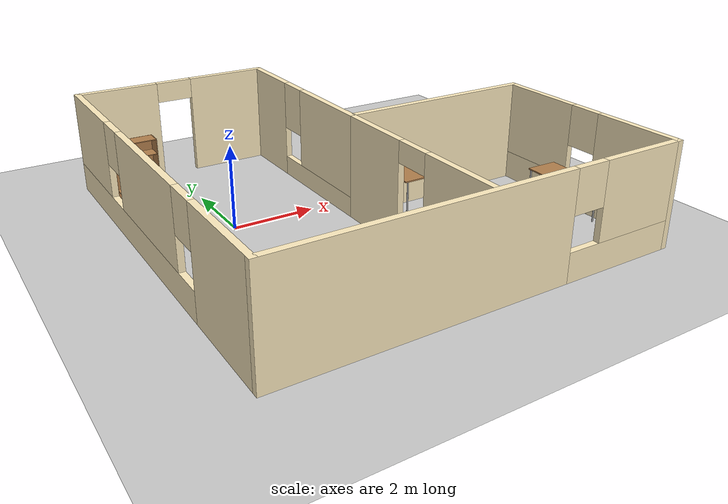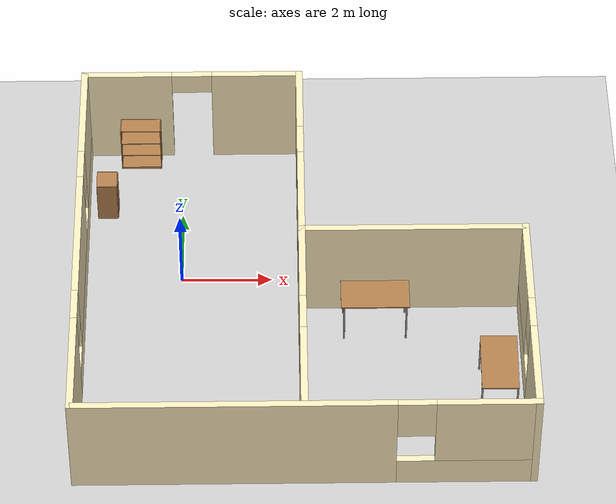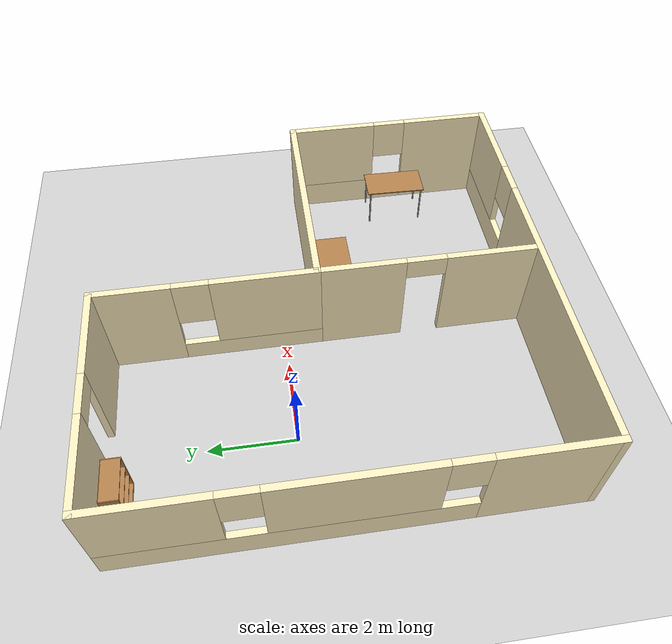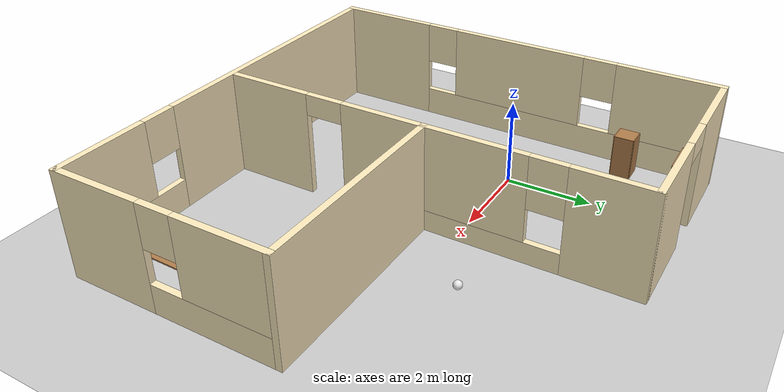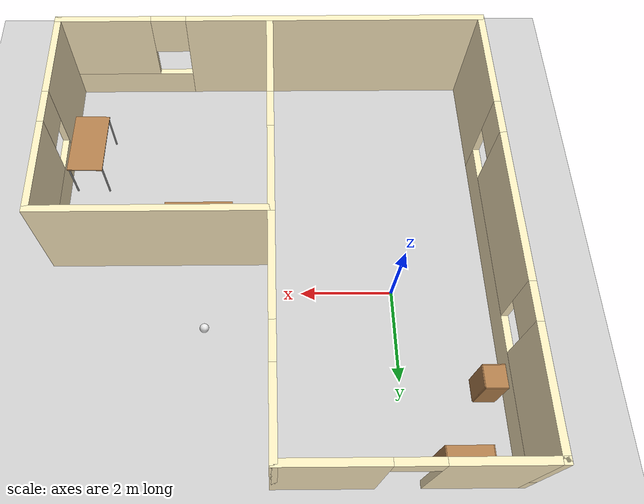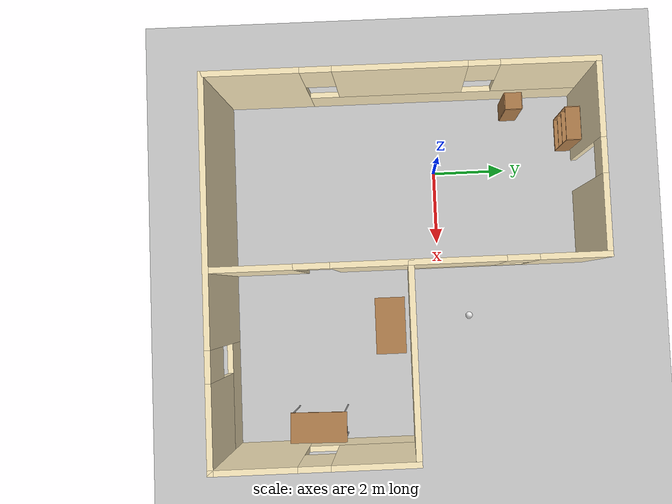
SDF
<sdf version="1.6">
 <world name="default">
  <plugin name="hello" filename="libhello.so"/>
  <light name="sun" type="directional">
   <pose>0 0 10 0 -0 0</pose>
   <diffuse>0.8 0.8 0.8 1</diffuse>
   <specular>0.2 0.2 0.2 1</specular>
   <attenuation>
    <range>1000</range>
    <constant>0.9</constant>
    <linear>0.01</linear>
    <quadratic>0.001</quadratic>
   </attenuation>
   <direction>-0.5 0.1 -0.9</direction>
  </light>
  <model name="ground_plane">
   <static>1</static>
   <link name="link">
    <collision name="collision">
     <geometry><plane><normal>0 0 1</normal><size>100 100</size></plane></geometry>
     <surface>
      <contact><collide_bitmask>65535</collide_bitmask></contact>
      <friction><ode><mu>100</mu><mu2>50</mu2></ode></friction>
     </surface>
    </collision>
    <visual name="visual">
     <cast_shadows>0</cast_shadows>
     <geometry><plane><normal>0 0 1</normal><size>100 100</size></plane></geometry>
     <material>
      <script><uri>file://media/materials/scripts/gazebo.material</uri><name>Gazebo/Grey</name></script>
     </material>
    </visual>
   </link>
  </model>
  <gravity>0 0 -9.8</gravity>
  <magnetic_field>6e-06 2.3e-05 -4.2e-05</magnetic_field>
  <atmosphere type="adiabatic"/>
  <physics name="default_physics" default="0" type="ode">
   <max_step_size>0.001</max_step_size>
   <real_time_factor>1</real_time_factor>
   <real_time_update_rate>1000</real_time_update_rate>
  </physics>
  <scene><ambient>0.4 0.4 0.4 1</ambient><background>0.7 0.7 0.7 1</background><shadows>1</shadows></scene>
  <spherical_coordinates>
   <surface_model>EARTH_WGS84</surface_model>
   <latitude_deg>0</latitude_deg>
   <longitude_deg>0</longitude_deg>
   <elevation>0</elevation>
   <heading_deg>0</heading_deg>
  </spherical_coordinates>
  <model name="mybuilding">
   <pose>2.65738 -0.872216 0 0 -0 0</pose>
   <link name="Wall_62">
    <pose>-4.85 0 0 0 -0 1.5708</pose>
    <visual name="Wall_62_Visual_0">
     <pose>-3.74581 0 1.25 0 -0 0</pose>
     <geometry><box><size>2.50837 0.15 2.5</size></box></geometry>
     <material>
      <script><uri>file://media/materials/scripts/gazebo.material</uri><name>Gazebo/Grey</name></script>
      <ambient>1 0.929412 0.752941 1</ambient>
     </material>
     <meta><layer>0</layer></meta>
    </visual>
    <collision name="Wall_62_Collision_0">
     <geometry><box><size>2.50837 0.15 2.5</size></box></geometry>
     <pose>-3.74581 0 1.25 0 -0 0</pose>
    </collision>
    <visual name="Wall_62_Visual_1">
     <pose>1.25419 0 0.35 0 -0 0</pose>
     <geometry><box><size>7.49163 0.15 0.7</size></box></geometry>
     <material>
      <script><uri>file://media/materials/scripts/gazebo.material</uri><name>Gazebo/Grey</name></script>
      <ambient>1 0.929412 0.752941 1</ambient>
     </material>
     <meta><layer>0</layer></meta>
    </visual>
    <collision name="Wall_62_Collision_1">
     <geometry><box><size>7.49163 0.15 0.7</size></box></geometry>
     <pose>1.25419 0 0.35 0 -0 0</pose>
    </collision>
    <visual name="Wall_62_Visual_2">
     <pose>-0.000724 0 1.6 0 -0 0</pose>
     <geometry><box><size>3.3818 0.15 1.8</size></box></geometry>
     <material>
      <script><uri>file://media/materials/scripts/gazebo.material</uri><name>Gazebo/Grey</name></script>
      <ambient>1 0.929412 0.752941 1</ambient>
     </material>
     <meta><layer>0</layer></meta>
    </visual>
    <collision name="Wall_62_Collision_2">
     <geometry><box><size>3.3818 0.15 1.8</size></box></geometry>
     <pose>-0.000724 0 1.6 0 -0 0</pose>
    </collision>
    <visual name="Wall_62_Visual_3">
     <pose>3.74509 0 1.6 0 -0 0</pose>
     <geometry><box><size>2.50982 0.15 1.8</size></box></geometry>
     <material>
      <script><uri>file://media/materials/scripts/gazebo.material</uri><name>Gazebo/Grey</name></script>
      <ambient>1 0.929412 0.752941 1</ambient>
     </material>
     <meta><layer>0</layer></meta>
    </visual>
    <collision name="Wall_62_Collision_3">
     <geometry><box><size>2.50982 0.15 1.8</size></box></geometry>
     <pose>3.74509 0 1.6 0 -0 0</pose>
    </collision>
    <visual name="Wall_62_Visual_4">
     <pose>-2.09163 0 2 0 -0 0</pose>
     <geometry><box><size>0.8 0.15 1</size></box></geometry>
     <material>
      <script><uri>file://media/materials/scripts/gazebo.material</uri><name>Gazebo/Grey</name></script>
      <ambient>1 0.929412 0.752941 1</ambient>
     </material>
     <meta><layer>0</layer></meta>
    </visual>
    <collision name="Wall_62_Collision_4">
     <geometry><box><size>0.8 0.15 1</size></box></geometry>
     <pose>-2.09163 0 2 0 -0 0</pose>
    </collision>
    <visual name="Wall_62_Visual_5">
     <pose>2.09018 0 2 0 -0 0</pose>
     <geometry><box><size>0.8 0.15 1</size></box></geometry>
     <material>
      <script><uri>file://media/materials/scripts/gazebo.material</uri><name>Gazebo/Grey</name></script>
      <ambient>1 0.929412 0.752941 1</ambient>
     </material>
     <meta><layer>0</layer></meta>
    </visual>
    <collision name="Wall_62_Collision_5">
     <geometry><box><size>0.8 0.15 1</size></box></geometry>
     <pose>2.09018 0 2 0 -0 0</pose>
    </collision>
   </link>
   <link name="Wall_64">
    <pose>-2.425 4.925 0 0 -0 0</pose>
    <visual name="Wall_64_Visual_0">
     <pose>-1.47838 0 1.25 0 -0 0</pose>
     <geometry><box><size>2.04324 0.15 2.5</size></box></geometry>
     <material>
      <script><uri>file://media/materials/scripts/gazebo.material</uri><name>Gazebo/Grey</name></script>
      <ambient>1 0.929412 0.752941 1</ambient>
     </material>
     <meta><layer>0</layer></meta>
    </visual>
    <collision name="Wall_64_Collision_0">
     <geometry><box><size>2.04324 0.15 2.5</size></box></geometry>
     <pose>-1.47838 0 1.25 0 -0 0</pose>
    </collision>
    <visual name="Wall_64_Visual_1">
     <pose>1.47162 0 1.25 0 -0 0</pose>
     <geometry><box><size>2.05676 0.15 2.5</size></box></geometry>
     <material>
      <script><uri>file://media/materials/scripts/gazebo.material</uri><name>Gazebo/Grey</name></script>
      <ambient>1 0.929412 0.752941 1</ambient>
     </material>
     <meta><layer>0</layer></meta>
    </visual>
    <collision name="Wall_64_Collision_1">
     <geometry><box><size>2.05676 0.15 2.5</size></box></geometry>
     <pose>1.47162 0 1.25 0 -0 0</pose>
    </collision>
    <visual name="Wall_64_Visual_2">
     <pose>-0.006757 0 2.25 0 -0 0</pose>
     <geometry><box><size>0.9 0.15 0.5</size></box></geometry>
     <material>
      <script><uri>file://media/materials/scripts/gazebo.material</uri><name>Gazebo/Grey</name></script>
      <ambient>1 0.929412 0.752941 1</ambient>
     </material>
     <meta><layer>0</layer></meta>
    </visual>
    <collision name="Wall_64_Collision_2">
     <geometry><box><size>0.9 0.15 0.5</size></box></geometry>
     <pose>-0.006757 0 2.25 0 -0 0</pose>
    </collision>
   </link>
   <link name="Wall_66">
    <pose>0 2.5 0 0 0 -1.5708</pose>
    <visual name="Wall_66_Visual_0">
     <pose>-1.60752 0 1.25 0 -0 0</pose>
     <geometry><box><size>1.78496 0.15 2.5</size></box></geometry>
     <material>
      <script><uri>file://media/materials/scripts/gazebo.material</uri><name>Gazebo/Grey</name></script>
      <ambient>1 0.929412 0.752941 1</ambient>
     </material>
     <meta><layer>0</layer></meta>
    </visual>
    <collision name="Wall_66_Collision_0">
     <geometry><box><size>1.78496 0.15 2.5</size></box></geometry>
     <pose>-1.60752 0 1.25 0 -0 0</pose>
    </collision>
    <visual name="Wall_66_Visual_1">
     <pose>0.892479 0 0.25 0 -0 0</pose>
     <geometry><box><size>3.21504 0.15 0.5</size></box></geometry>
     <material>
      <script><uri>file://media/materials/scripts/gazebo.material</uri><name>Gazebo/Grey</name></script>
      <ambient>1 0.929412 0.752941 1</ambient>
     </material>
     <meta><layer>0</layer></meta>
    </visual>
    <collision name="Wall_66_Collision_1">
     <geometry><box><size>3.21504 0.15 0.5</size></box></geometry>
     <pose>0.892479 0 0.25 0 -0 0</pose>
    </collision>
    <visual name="Wall_66_Visual_2">
     <pose>1.29248 0 1.5 0 -0 0</pose>
     <geometry><box><size>2.41504 0.15 2</size></box></geometry>
     <material>
      <script><uri>file://media/materials/scripts/gazebo.material</uri><name>Gazebo/Grey</name></script>
      <ambient>1 0.929412 0.752941 1</ambient>
     </material>
     <meta><layer>0</layer></meta>
    </visual>
    <collision name="Wall_66_Collision_2">
     <geometry><box><size>2.41504 0.15 2</size></box></geometry>
     <pose>1.29248 0 1.5 0 -0 0</pose>
    </collision>
    <visual name="Wall_66_Visual_3">
     <pose>-0.315041 0 1.9 0 -0 0</pose>
     <geometry><box><size>0.8 0.15 1.2</size></box></geometry>
     <material>
      <script><uri>file://media/materials/scripts/gazebo.material</uri><name>Gazebo/Grey</name></script>
      <ambient>1 0.929412 0.752941 1</ambient>
     </material>
     <meta><layer>0</layer></meta>
    </visual>
    <collision name="Wall_66_Collision_3">
     <geometry><box><size>0.8 0.15 1.2</size></box></geometry>
     <pose>-0.315041 0 1.9 0 -0 0</pose>
    </collision>
   </link>
   <link name="Wall_71">
    <collision name="Wall_71_Collision">
     <geometry><box><size>5 0.15 2.5</size></box></geometry>
     <pose>0 0 1.25 0 -0 0</pose>
    </collision>
    <visual name="Wall_71_Visual">
     <pose>0 0 1.25 0 -0 0</pose>
     <geometry><box><size>5 0.15 2.5</size></box></geometry>
     <material>
      <script><uri>file://media/materials/scripts/gazebo.material</uri><name>Gazebo/Grey</name></script>
      <ambient>1 0.929412 0.752941 1</ambient>
     </material>
     <meta><layer>0</layer></meta>
    </visual>
    <pose>2.425 0.075 0 0 -0 0</pose>
   </link>
   <link name="Wall_74">
    <pose>4.85 -2.425 0 0 -0 1.5708</pose>
    <visual name="Wall_74_Visual_0">
     <pose>-1.49177 0 1.25 0 -0 0</pose>
     <geometry><box><size>2.16647 0.15 2.5</size></box></geometry>
     <material>
      <script><uri>file://media/materials/scripts/gazebo.material</uri><name>Gazebo/Grey</name></script>
      <ambient>1 0.929412 0.752941 1</ambient>
     </material>
     <meta><layer>0</layer></meta>
    </visual>
    <collision name="Wall_74_Collision_0">
     <geometry><box><size>2.16647 0.15 2.5</size></box></geometry>
     <pose>-1.49177 0 1.25 0 -0 0</pose>
    </collision>
    <visual name="Wall_74_Visual_1">
     <pose>1.08323 0 0.35 0 -0 0</pose>
     <geometry><box><size>2.98353 0.15 0.7</size></box></geometry>
     <material>
      <script><uri>file://media/materials/scripts/gazebo.material</uri><name>Gazebo/Grey</name></script>
      <ambient>1 0.929412 0.752941 1</ambient>
     </material>
     <meta><layer>0</layer></meta>
    </visual>
    <collision name="Wall_74_Collision_1">
     <geometry><box><size>2.98353 0.15 0.7</size></box></geometry>
     <pose>1.08323 0 0.35 0 -0 0</pose>
    </collision>
    <visual name="Wall_74_Visual_2">
     <pose>1.48323 0 1.6 0 -0 0</pose>
     <geometry><box><size>2.18353 0.15 1.8</size></box></geometry>
     <material>
      <script><uri>file://media/materials/scripts/gazebo.material</uri><name>Gazebo/Grey</name></script>
      <ambient>1 0.929412 0.752941 1</ambient>
     </material>
     <meta><layer>0</layer></meta>
    </visual>
    <collision name="Wall_74_Collision_2">
     <geometry><box><size>2.18353 0.15 1.8</size></box></geometry>
     <pose>1.48323 0 1.6 0 -0 0</pose>
    </collision>
    <visual name="Wall_74_Visual_3">
     <pose>-0.008534 0 2 0 -0 0</pose>
     <geometry><box><size>0.8 0.15 1</size></box></geometry>
     <material>
      <script><uri>file://media/materials/scripts/gazebo.material</uri><name>Gazebo/Grey</name></script>
      <ambient>1 0.929412 0.752941 1</ambient>
     </material>
     <meta><layer>0</layer></meta>
    </visual>
    <collision name="Wall_74_Collision_3">
     <geometry><box><size>0.8 0.15 1</size></box></geometry>
     <pose>-0.008534 0 2 0 -0 0</pose>
    </collision>
   </link>
   <link name="Wall_76">
    <pose>0 -4.925 0 0 -0 0</pose>
    <visual name="Wall_76_Visual_0">
     <pose>-1.49862 0 1.25 0 -0 0</pose>
     <geometry><box><size>6.85275 0.15 2.5</size></box></geometry>
     <material>
      <script><uri>file://media/materials/scripts/gazebo.material</uri><name>Gazebo/Grey</name></script>
      <ambient>1 0.929412 0.752941 1</ambient>
     </material>
     <meta><layer>0</layer></meta>
    </visual>
    <collision name="Wall_76_Collision_0">
     <geometry><box><size>6.85275 0.15 2.5</size></box></geometry>
     <pose>-1.49862 0 1.25 0 -0 0</pose>
    </collision>
    <visual name="Wall_76_Visual_1">
     <pose>3.42638 0 0.35 0 -0 0</pose>
     <geometry><box><size>2.99725 0.15 0.7</size></box></geometry>
     <material>
      <script><uri>file://media/materials/scripts/gazebo.material</uri><name>Gazebo/Grey</name></script>
      <ambient>1 0.929412 0.752941 1</ambient>
     </material>
     <meta><layer>0</layer></meta>
    </visual>
    <collision name="Wall_76_Collision_1">
     <geometry><box><size>2.99725 0.15 0.7</size></box></geometry>
     <pose>3.42638 0 0.35 0 -0 0</pose>
    </collision>
    <visual name="Wall_76_Visual_2">
     <pose>3.82638 0 1.6 0 -0 0</pose>
     <geometry><box><size>2.19725 0.15 1.8</size></box></geometry>
     <material>
      <script><uri>file://media/materials/scripts/gazebo.material</uri><name>Gazebo/Grey</name></script>
      <ambient>1 0.929412 0.752941 1</ambient>
     </material>
     <meta><layer>0</layer></meta>
    </visual>
    <collision name="Wall_76_Collision_2">
     <geometry><box><size>2.19725 0.15 1.8</size></box></geometry>
     <pose>3.82638 0 1.6 0 -0 0</pose>
    </collision>
    <visual name="Wall_76_Visual_3">
     <pose>2.32775 0 2 0 -0 0</pose>
     <geometry><box><size>0.8 0.15 1</size></box></geometry>
     <material>
      <script><uri>file://media/materials/scripts/gazebo.material</uri><name>Gazebo/Grey</name></script>
      <ambient>1 0.929412 0.752941 1</ambient>
     </material>
     <meta><layer>0</layer></meta>
    </visual>
    <collision name="Wall_76_Collision_3">
     <geometry><box><size>0.8 0.15 1</size></box></geometry>
     <pose>2.32775 0 2 0 -0 0</pose>
    </collision>
   </link>
   <link name="Wall_78">
    <pose>0 -2.35 0 0 0 -1.5708</pose>
    <visual name="Wall_78_Visual_0">
     <pose>-1.47268 0 1.25 0 -0 0</pose>
     <geometry><box><size>2.05463 0.15 2.5</size></box></geometry>
     <material>
      <script><uri>file://media/materials/scripts/gazebo.material</uri><name>Gazebo/Grey</name></script>
      <ambient>1 0.929412 0.752941 1</ambient>
     </material>
     <meta><layer>0</layer></meta>
    </visual>
    <collision name="Wall_78_Collision_0">
     <geometry><box><size>2.05463 0.15 2.5</size></box></geometry>
     <pose>-1.47268 0 1.25 0 -0 0</pose>
    </collision>
    <visual name="Wall_78_Visual_1">
     <pose>1.47732 0 1.25 0 -0 0</pose>
     <geometry><box><size>2.04537 0.15 2.5</size></box></geometry>
     <material>
      <script><uri>file://media/materials/scripts/gazebo.material</uri><name>Gazebo/Grey</name></script>
      <ambient>1 0.929412 0.752941 1</ambient>
     </material>
     <meta><layer>0</layer></meta>
    </visual>
    <collision name="Wall_78_Collision_1">
     <geometry><box><size>2.04537 0.15 2.5</size></box></geometry>
     <pose>1.47732 0 1.25 0 -0 0</pose>
    </collision>
    <visual name="Wall_78_Visual_2">
     <pose>0.004632 0 2.25 0 -0 0</pose>
     <geometry><box><size>0.9 0.15 0.5</size></box></geometry>
     <material>
      <script><uri>file://media/materials/scripts/gazebo.material</uri><name>Gazebo/Grey</name></script>
      <ambient>1 0.929412 0.752941 1</ambient>
     </material>
     <meta><layer>0</layer></meta>
    </visual>
    <collision name="Wall_78_Collision_2">
     <geometry><box><size>0.9 0.15 0.5</size></box></geometry>
     <pose>0.004632 0 2.25 0 -0 0</pose>
    </collision>
   </link>
   <static>1</static>
  </model>
  <model name="bookshelf">
   <static>1</static>
   <link name="link">
    <inertial><mass>1</mass></inertial>
    <collision name="back">
     <pose>0 0.005 0.6 0 -0 0</pose>
     <geometry><box><size>0.9 0.01 1.2</size></box></geometry>
    </collision>
    <visual name="visual1">
     <pose>0 0.005 0.6 0 -0 0</pose>
     <geometry><box><size>0.9 0.01 1.2</size></box></geometry>
     <material>
      <script><uri>file://media/materials/scripts/gazebo.material</uri><name>Gazebo/Wood</name></script>
     </material>
    </visual>
    <collision name="left_side">
     <pose>0.45 -0.195 0.6 0 -0 0</pose>
     <geometry><box><size>0.02 0.4 1.2</size></box></geometry>
    </collision>
    <visual name="visual2">
     <pose>0.45 -0.195 0.6 0 -0 0</pose>
     <geometry><box><size>0.02 0.4 1.2</size></box></geometry>
     <material>
      <script><uri>file://media/materials/scripts/gazebo.material</uri><name>Gazebo/Wood</name></script>
     </material>
    </visual>
    <collision name="right_side">
     <pose>-0.45 -0.195 0.6 0 -0 0</pose>
     <geometry><box><size>0.02 0.4 1.2</size></box></geometry>
    </collision>
    <visual name="visual3">
     <pose>-0.45 -0.195 0.6 0 -0 0</pose>
     <geometry><box><size>0.02 0.4 1.2</size></box></geometry>
     <material>
      <script><uri>file://media/materials/scripts/gazebo.material</uri><name>Gazebo/Wood</name></script>
     </material>
    </visual>
    <collision name="bottom">
     <pose>0 -0.195 0.03 0 -0 0</pose>
     <geometry><box><size>0.88 0.4 0.06</size></box></geometry>
    </collision>
    <visual name="visual4">
     <pose>0 -0.195 0.03 0 -0 0</pose>
     <geometry><box><size>0.88 0.4 0.06</size></box></geometry>
     <material>
      <script><uri>file://media/materials/scripts/gazebo.material</uri><name>Gazebo/Wood</name></script>
     </material>
    </visual>
    <collision name="top">
     <pose>0 -0.195 1.19 0 -0 0</pose>
     <geometry><box><size>0.88 0.4 0.02</size></box></geometry>
    </collision>
    <visual name="visual5">
     <pose>0 -0.195 1.19 0 -0 0</pose>
     <geometry><box><size>0.88 0.4 0.02</size></box></geometry>
     <material>
      <script><uri>file://media/materials/scripts/gazebo.material</uri><name>Gazebo/Wood</name></script>
     </material>
    </visual>
    <collision name="low_shelf">
     <pose>0 -0.195 0.43 0 -0 0</pose>
     <geometry><box><size>0.88 0.4 0.02</size></box></geometry>
    </collision>
    <visual name="visual6">
     <pose>0 -0.195 0.43 0 -0 0</pose>
     <geometry><box><size>0.88 0.4 0.02</size></box></geometry>
     <material>
      <script><uri>file://media/materials/scripts/gazebo.material</uri><name>Gazebo/Wood</name></script>
     </material>
    </visual>
    <collision name="high_shelf">
     <pose>0 -0.195 0.8 0 -0 0</pose>
     <geometry><box><size>0.88 0.4 0.02</size></box></geometry>
    </collision>
    <visual name="visual7">
     <pose>0 -0.195 0.8 0 -0 0</pose>
     <geometry><box><size>0.88 0.4 0.02</size></box></geometry>
     <material>
      <script><uri>file://media/materials/scripts/gazebo.material</uri><name>Gazebo/Wood</name></script>
     </material>
    </visual>
   </link>
   <pose>-0.969437 3.93118 0 0 -0 0</pose>
  </model>
  <model name="table">
   <static>1</static>
   <link name="link">
    <collision name="surface">
     <pose>0 0 1 0 -0 0</pose>
     <geometry><box><size>1.5 0.8 0.03</size></box></geometry>
     <surface><friction><ode><mu>0.6</mu><mu2>0.6</mu2></ode></friction></surface>
    </collision>
    <visual name="visual1">
     <pose>0 0 1 0 -0 0</pose>
     <geometry><box><size>1.5 0.8 0.03</size></box></geometry>
     <material>
      <script><uri>file://media/materials/scripts/gazebo.material</uri><name>Gazebo/Wood</name></script>
     </material>
    </visual>
    <collision name="front_left_leg">
     <pose>0.68 0.38 0.5 0 -0 0</pose>
     <geometry><cylinder><radius>0.02</radius><length>1</length></cylinder></geometry>
    </collision>
    <visual name="front_left_leg">
     <pose>0.68 0.38 0.5 0 -0 0</pose>
     <geometry><cylinder><radius>0.02</radius><length>1</length></cylinder></geometry>
     <material>
      <script><uri>file://media/materials/scripts/gazebo.material</uri><name>Gazebo/Grey</name></script>
     </material>
    </visual>
    <collision name="front_right_leg">
     <pose>0.68 -0.38 0.5 0 -0 0</pose>
     <geometry><cylinder><radius>0.02</radius><length>1</length></cylinder></geometry>
    </collision>
    <visual name="front_right_leg">
     <pose>0.68 -0.38 0.5 0 -0 0</pose>
     <geometry><cylinder><radius>0.02</radius><length>1</length></cylinder></geometry>
     <material>
      <script><uri>file://media/materials/scripts/gazebo.material</uri><name>Gazebo/Grey</name></script>
     </material>
    </visual>
    <collision name="back_right_leg">
     <pose>-0.68 -0.38 0.5 0 -0 0</pose>
     <geometry><cylinder><radius>0.02</radius><length>1</length></cylinder></geometry>
    </collision>
    <visual name="back_right_leg">
     <pose>-0.68 -0.38 0.5 0 -0 0</pose>
     <geometry><cylinder><radius>0.02</radius><length>1</length></cylinder></geometry>
     <material>
      <script><uri>file://media/materials/scripts/gazebo.material</uri><name>Gazebo/Grey</name></script>
     </material>
    </visual>
    <collision name="back_left_leg">
     <pose>-0.68 0.38 0.5 0 -0 0</pose>
     <geometry><cylinder><radius>0.02</radius><length>1</length></cylinder></geometry>
    </collision>
    <visual name="back_left_leg">
     <pose>-0.68 0.38 0.5 0 -0 0</pose>
     <geometry><cylinder><radius>0.02</radius><length>1</length></cylinder></geometry>
     <material>
      <script><uri>file://media/materials/scripts/gazebo.material</uri><name>Gazebo/Grey</name></script>
     </material>
    </visual>
   </link>
   <pose>4.2545 -1.39252 0 0 -0 0</pose>
  </model>
  <model name="table_clone">
   <static>1</static>
   <link name="link">
    <collision name="surface">
     <pose>0 0 1 0 -0 0</pose>
     <geometry><box><size>1.5 0.8 0.03</size></box></geometry>
     <surface><friction><ode><mu>0.6</mu><mu2>0.6</mu2></ode></friction></surface>
    </collision>
    <visual name="visual1">
     <pose>0 0 1 0 -0 0</pose>
     <geometry><box><size>1.5 0.8 0.03</size></box></geometry>
     <material>
      <script><uri>file://media/materials/scripts/gazebo.material</uri><name>Gazebo/Wood</name></script>
     </material>
    </visual>
    <collision name="front_left_leg">
     <pose>0.68 0.38 0.5 0 -0 0</pose>
     <geometry><cylinder><radius>0.02</radius><length>1</length></cylinder></geometry>
    </collision>
    <visual name="front_left_leg">
     <pose>0.68 0.38 0.5 0 -0 0</pose>
     <geometry><cylinder><radius>0.02</radius><length>1</length></cylinder></geometry>
     <material>
      <script><uri>file://media/materials/scripts/gazebo.material</uri><name>Gazebo/Grey</name></script>
     </material>
    </visual>
    <collision name="front_right_leg">
     <pose>0.68 -0.38 0.5 0 -0 0</pose>
     <geometry><cylinder><radius>0.02</radius><length>1</length></cylinder></geometry>
    </collision>
    <visual name="front_right_leg">
     <pose>0.68 -0.38 0.5 0 -0 0</pose>
     <geometry><cylinder><radius>0.02</radius><length>1</length></cylinder></geometry>
     <material>
      <script><uri>file://media/materials/scripts/gazebo.material</uri><name>Gazebo/Grey</name></script>
     </material>
    </visual>
    <collision name="back_right_leg">
     <pose>-0.68 -0.38 0.5 0 -0 0</pose>
     <geometry><cylinder><radius>0.02</radius><length>1</length></cylinder></geometry>
    </collision>
    <visual name="back_right_leg">
     <pose>-0.68 -0.38 0.5 0 -0 0</pose>
     <geometry><cylinder><radius>0.02</radius><length>1</length></cylinder></geometry>
     <material>
      <script><uri>file://media/materials/scripts/gazebo.material</uri><name>Gazebo/Grey</name></script>
     </material>
    </visual>
    <collision name="back_left_leg">
     <pose>-0.68 0.38 0.5 0 -0 0</pose>
     <geometry><cylinder><radius>0.02</radius><length>1</length></cylinder></geometry>
    </collision>
    <visual name="back_left_leg">
     <pose>-0.68 0.38 0.5 0 -0 0</pose>
     <geometry><cylinder><radius>0.02</radius><length>1</length></cylinder></geometry>
     <material>
      <script><uri>file://media/materials/scripts/gazebo.material</uri><name>Gazebo/Grey</name></script>
     </material>
    </visual>
   </link>
   <pose>6.87041 -3.39999 0 0 -0 1.55</pose>
  </model>
  <model name="cabinet">
   <static>1</static>
   <link name="cabinet_bottom_plate">
    <inertial>
     <pose>0 0 -1 0 -0 0</pose>
     <inertia><ixx>2.05</ixx><ixy>0</ixy><ixz>0</ixz><iyy>2.05</iyy><iyz>0</iyz><izz>2.05</izz></inertia>
     <mass>25</mass>
    </inertial>
    <collision name="cabinet_bottom_plate_geom">
     <pose>0 0 0.01 0 -0 0</pose>
     <geometry><box><size>0.45 0.45 0.02</size></box></geometry>
    </collision>
    <visual name="cabinet_bottom_plate_geom_visual">
     <pose>0 0 0.01 0 -0 0</pose>
     <geometry><box><size>0.45 0.45 0.02</size></box></geometry>
     <material>
      <script><uri>file://media/materials/scripts/gazebo.material</uri><name>Gazebo/Wood</name></script>
     </material>
    </visual>
    <collision name="cabinet_bottom_plate_geom_cabinet_back_plate">
     <pose>0.235 0 0.51 0 -0 0</pose>
     <geometry><box><size>0.02 0.45 1.02</size></box></geometry>
    </collision>
    <visual name="cabinet_bottom_plate_geom_cabinet_back_plate_visual">
     <pose>0.235 0 0.51 0 -0 0</pose>
     <geometry><box><size>0.02 0.45 1.02</size></box></geometry>
     <material>
      <script><uri>file://media/materials/scripts/gazebo.material</uri><name>Gazebo/Wood</name></script>
     </material>
    </visual>
    <collision name="cabinet_bottom_plate_geom_cabinet_left_plate">
     <pose>0 0.235 0.51 0 -0 0</pose>
     <geometry><box><size>0.45 0.02 1.02</size></box></geometry>
    </collision>
    <visual name="cabinet_bottom_plate_geom_cabinet_left_plate_visual">
     <pose>0 0.235 0.51 0 -0 0</pose>
     <geometry><box><size>0.45 0.02 1.02</size></box></geometry>
     <material>
      <script><uri>file://media/materials/scripts/gazebo.material</uri><name>Gazebo/Wood</name></script>
     </material>
    </visual>
    <collision name="cabinet_bottom_plate_geom_cabinet_middle_plate">
     <pose>0 0 0.51 0 -0 0</pose>
     <geometry><box><size>0.45 0.45 0.02</size></box></geometry>
    </collision>
    <visual name="cabinet_bottom_plate_geom_cabinet_middle_plate_visual">
     <pose>0 0 0.51 0 -0 0</pose>
     <geometry><box><size>0.45 0.45 0.02</size></box></geometry>
     <material>
      <script><uri>file://media/materials/scripts/gazebo.material</uri><name>Gazebo/Wood</name></script>
     </material>
    </visual>
    <collision name="cabinet_bottom_plate_geom_cabinet_right_plate">
     <pose>0 -0.235 0.51 0 -0 0</pose>
     <geometry><box><size>0.45 0.02 1.02</size></box></geometry>
    </collision>
    <visual name="cabinet_bottom_plate_geom_cabinet_right_plate_visual">
     <pose>0 -0.235 0.51 0 -0 0</pose>
     <geometry><box><size>0.45 0.02 1.02</size></box></geometry>
     <material>
      <script><uri>file://media/materials/scripts/gazebo.material</uri><name>Gazebo/Wood</name></script>
     </material>
    </visual>
    <collision name="cabinet_bottom_plate_geom_cabinet_top_plate">
     <pose>0 0 1.01 0 -0 0</pose>
     <geometry><box><size>0.45 0.45 0.02</size></box></geometry>
    </collision>
    <visual name="cabinet_bottom_plate_geom_cabinet_top_plate_visual">
     <pose>0 0 1.01 0 -0 0</pose>
     <geometry><box><size>0.45 0.45 0.02</size></box></geometry>
     <material>
      <script><uri>file://media/materials/scripts/gazebo.material</uri><name>Gazebo/Wood</name></script>
     </material>
    </visual>
   </link>
   <pose>-1.70722 2.19421 0 0 -0 0</pose>
  </model>
  <model name="my_ball">
   <link name="link_0">
    <inertial>
     <mass>1</mass>
     <inertia><ixx>0.1</ixx><ixy>0</ixy><ixz>0</ixz><iyy>0.1</iyy><iyz>0</iyz><izz>0.1</izz></inertia>
    </inertial>
    <visual name="visual">
     <geometry><sphere><radius>0.1</radius></sphere></geometry>
     <material>
      <lighting>1</lighting>
      <script><uri>file://media/materials/scripts/gazebo.material</uri><name>Gazebo/White</name></script>
      <shader type="pixel"><normal_map>__default__</normal_map></shader>
      <ambient>1 1 1 1</ambient>
      <diffuse>1 1 1 1</diffuse>
      <specular>1 1 1 1</specular>
      <emissive>1 1 1 1</emissive>
     </material>
    </visual>
    <collision name="collision">
     <geometry><sphere><radius>0.1</radius></sphere></geometry>
     <surface>
      <friction>
       <ode><mu>1</mu><mu2>1</mu2><fdir1>0 0 0</fdir1><slip1>0</slip1><slip2>0</slip2></ode>
       <torsional>
        <coefficient>1</coefficient>
        <patch_radius>0</patch_radius>
        <surface_radius>0</surface_radius>
        <use_patch_radius>1</use_patch_radius>
        <ode><slip>0</slip></ode>
       </torsional>
      </friction>
      <bounce><restitution_coefficient>0</restitution_coefficient><threshold>1e+06</threshold></bounce>
      <contact>
       <collide_without_contact>0</collide_without_contact>
       <collide_without_contact_bitmask>1</collide_without_contact_bitmask>
       <collide_bitmask>1</collide_bitmask>
       <ode>
        <soft_cfm>0</soft_cfm>
        <soft_erp>0.2</soft_erp>
        <kp>1e+13</kp>
        <kd>1</kd>
        <max_vel>0.01</max_vel>
        <min_depth>0</min_depth>
       </ode>
       <bullet>
        <split_impulse>1</split_impulse>
        <split_impulse_penetration_threshold>-0.01</split_impulse_penetration_threshold>
        <soft_cfm>0</soft_cfm>
        <soft_erp>0.2</soft_erp>
        <kp>1e+13</kp>
        <kd>1</kd>
       </bullet>
      </contact>
     </surface>
    </collision>
   </link>
   <static>0</static>
   <pose>4.10873 0.821593 0.1 0 -0 0</pose>
  </model>
 </world>
</sdf>
